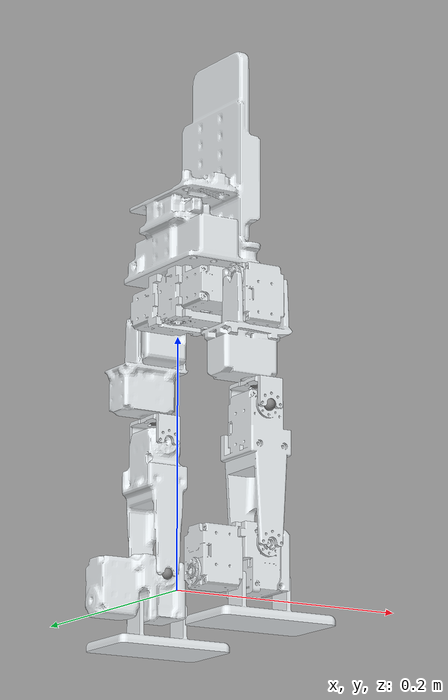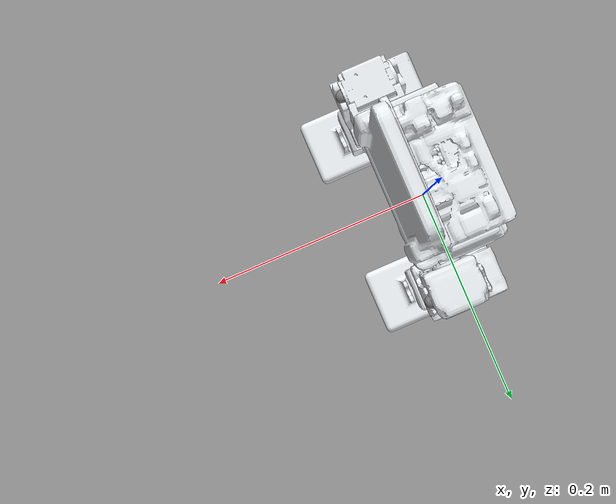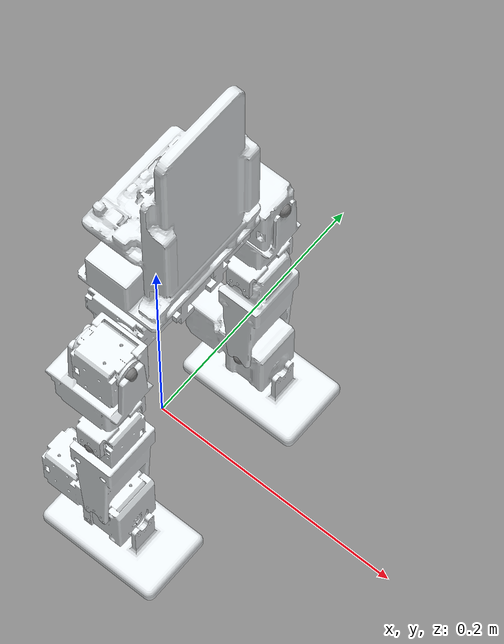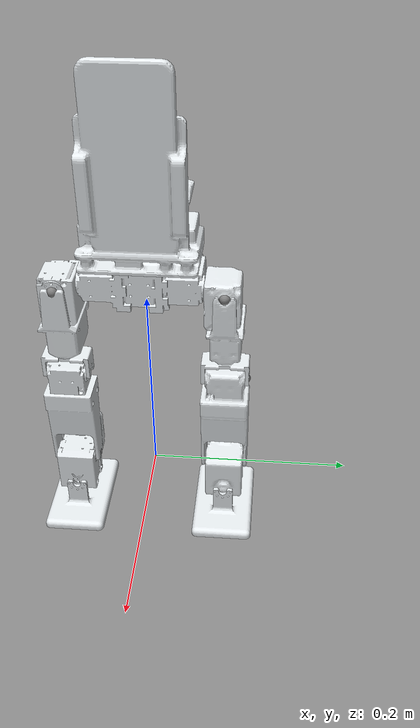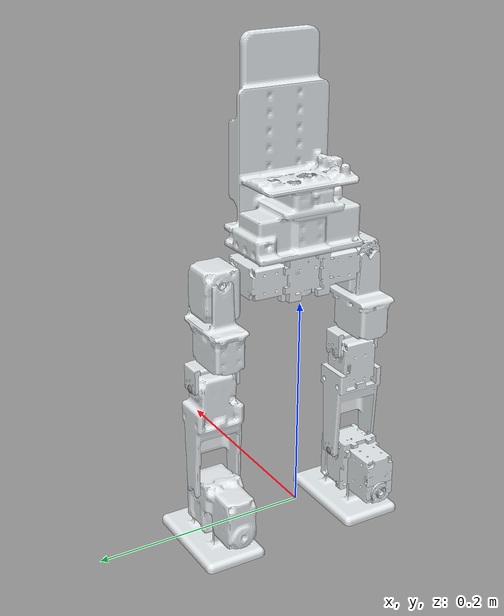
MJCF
<mujoco model="Phonebot_URDF_v2">
  <default>
    <default class="robot">
      <default class="motor">
        <joint />
        <motor />
        </default>
      <default class="visual">
        <geom material="visualgeom" contype="0" conaffinity="0" group="2" />
        </default>
      <default class="collision">
        <geom material="collision_material" condim="3" contype="0" conaffinity="1" priority="1" group="1" solref="0.005 1" solimp="0.99 0.999 1e-05" friction="1 0.01 0.01" />
        </default>
      </default>
    </default>
  <compiler angle="radian" meshdir="meshes/" />
  <asset>
    <material name="visualgeom" rgba="1 0.949019607843137 0.898039215686275 1" />
    <material name="default_material" rgba="0.7 0.7 0.7 1" />
    <material name="collision_material" rgba="0.89804 0.91765 0.92941 1.0" />
    <mesh name="base_link.STL" file="base_link.STL" />
    <mesh name="Body_Link.STL" file="Body_Link.STL" />
    <mesh name="L_Hip_Pitch_Link.STL" file="L_Hip_Pitch_Link.STL" />
    <mesh name="L_Hip_Roll_Link.STL" file="L_Hip_Roll_Link.STL" />
    <mesh name="L_Hip_Yaw_Link.STL" file="L_Hip_Yaw_Link.STL" />
    <mesh name="L_Knee_Pitch_Link.STL" file="L_Knee_Pitch_Link.STL" />
    <mesh name="L_Ankle_Pitch_Link.STL" file="L_Ankle_Pitch_Link.STL" />
    <mesh name="L_Ankle_Roll_Link.STL" file="L_Ankle_Roll_Link.STL" />
    <mesh name="R_Hip_Pitch_Link.STL" file="R_Hip_Pitch_Link.STL" />
    <mesh name="R_Hip_Roll_Link.STL" file="R_Hip_Roll_Link.STL" />
    <mesh name="R_Hip_Yaw_Link.STL" file="R_Hip_Yaw_Link.STL" />
    <mesh name="R_Knee_Pitch_Link.STL" file="R_Knee_Pitch_Link.STL" />
    <mesh name="R_Ankle_Pitch_Link.STL" file="R_Ankle_Pitch_Link.STL" />
    <mesh name="R_Ankle_Roll_Link.STL" file="R_Ankle_Roll_Link.STL" />
    </asset>
  <worldbody>
    <body name="base_link" pos="0.00000000 0.00000000 0.23100056" quat="1 0 0 0" childclass="robot">
      <freejoint name="floating_base" />
      <geom name="base_link_collision" pos="0 0 0" quat="1.0 0.0 0.0 0.0" type="mesh" mesh="base_link.STL" class="collision" />
      <geom name="base_link_visual" pos="0 0 0" quat="1.0 0.0 0.0 0.0" material="visualgeom" type="mesh" mesh="base_link.STL" class="visual" />
      <body name="Body_Link" pos="0 0 0.0205" quat="1.0 0.0 0.0 0.0">
        <joint name="Body_Yaw_Joint" type="hinge" ref="0.0" class="motor" range="-3.142 3.142" axis="0 0 1" />
        <site name="Body_Yaw_Joint_site" pos="0 0 0" quat="1 0 0 0" />
        <inertial pos="0.0218668011738023 -0.000431568318375537 0.05417319466971" quat="1.0 0.0 0.0 0.0" mass="0.386680464655816" diaginertia="0.000620927600653995 0.000390567916715494 0.000310705669130959" />
        <geom name="Body_Link_collision" pos="0 0 0" quat="1.0 0.0 0.0 0.0" type="mesh" mesh="Body_Link.STL" class="collision" />
        <geom name="Body_Link_visual" pos="0 0 0" quat="1.0 0.0 0.0 0.0" material="visualgeom" type="mesh" mesh="Body_Link.STL" class="visual" />
        </body>
      <body name="L_Hip_Pitch_Link" pos="0.024 0.05675 0" quat="0.7071054825112363 -0.7071080798594735 0.0 0.0">
        <joint name="L_Hip_Pitch_Joint" type="hinge" ref="0.0" class="motor" range="-1.571 1.571" axis="0 0 1" />
        <site name="L_Hip_Pitch_Joint_site" pos="0 0 0" quat="1 0 0 0" />
        <inertial pos="0.000393520865845574 0.0117226185476305 0.0166926526043892" quat="1.0 0.0 0.0 0.0" mass="0.0503140117431749" diaginertia="1.11934938325154e-05 7.37974976874462e-06 1.31723971411949e-05" />
        <geom name="L_Hip_Pitch_Link_collision" pos="0 0 0" quat="1.0 0.0 0.0 0.0" type="mesh" mesh="L_Hip_Pitch_Link.STL" class="collision" />
        <geom name="L_Hip_Pitch_Link_visual" pos="0 0 0" quat="1.0 0.0 0.0 0.0" material="visualgeom" type="mesh" mesh="L_Hip_Pitch_Link.STL" class="visual" />
        <body name="L_Hip_Roll_Link" pos="0.019 0 0.01875" quat="-2.5973434669646147e-06 0.707105482506466 2.597353007557415e-06 0.7071080798547033">
          <joint name="L_Hip_Roll_Joint" type="hinge" ref="0.0" class="motor" range="-0.786 3.142" axis="0 0 1" />
          <site name="L_Hip_Roll_Joint_site" pos="0 0 0" quat="1 0 0 0" />
          <inertial pos="8.30740041594946E-06 -0.0539730760978963 -0.0289917248021264" quat="1.0 0.0 0.0 0.0" mass="0.0577821503558218" diaginertia="1.85527228913837e-05 1.6254327826533e-05 9.78707268328593e-06" />
          <geom name="L_Hip_Roll_Link_collision" pos="0 0 0" quat="1.0 0.0 0.0 0.0" type="mesh" mesh="L_Hip_Roll_Link.STL" class="collision" />
          <geom name="L_Hip_Roll_Link_visual" pos="0 0 0" quat="1.0 0.0 0.0 0.0" material="visualgeom" type="mesh" mesh="L_Hip_Roll_Link.STL" class="visual" />
          <body name="L_Hip_Yaw_Link" pos="0 -0.07925 -0.019" quat="0.4999981633974483 0.49999999999662686 -0.49999999999662686 0.5000018366025516">
            <joint name="L_Hip_Yaw_Joint" type="hinge" ref="0.0" class="motor" range="-3.142 3.142" axis="0 0 1" />
            <site name="L_Hip_Yaw_Joint_site" pos="0 0 0" quat="1 0 0 0" />
            <inertial pos="1.04083408558608E-17 -1.38777878078145E-17 0.00625275879894566" quat="1.0 0.0 0.0 0.0" mass="0.00558246650899707" diaginertia="1.83396034792803e-06 4.55463603177527e-07 1.84259526538467e-06" />
            <geom name="L_Hip_Yaw_Link_collision" pos="0 0 0" quat="1.0 0.0 0.0 0.0" type="mesh" mesh="L_Hip_Yaw_Link.STL" class="collision" />
            <geom name="L_Hip_Yaw_Link_visual" pos="0 0 0" quat="1.0 0.0 0.0 0.0" material="visualgeom" type="mesh" mesh="L_Hip_Yaw_Link.STL" class="visual" />
            <body name="L_Knee_Pitch_Link" pos="0 -0.019 0.02125" quat="0.7071054825112363 0.7071080798594735 0.0 0.0">
              <joint name="L_Knee_Pitch_Joint" type="hinge" ref="0.0" class="motor" range="-1.571 1.571" axis="0 0 1" />
              <site name="L_Knee_Pitch_Joint_site" pos="0 0 0" quat="1 0 0 0" />
              <inertial pos="0.000851922444856955 0.0302265598825809 -0.0188367597643943" quat="1.0 0.0 0.0 0.0" mass="0.0859142330719075" diaginertia="3.92786008778373e-05 2.10807528817828e-05 3.03814272871544e-05" />
              <geom name="L_Knee_Pitch_Link_collision" pos="0 0 0" quat="1.0 0.0 0.0 0.0" type="mesh" mesh="L_Knee_Pitch_Link.STL" class="collision" />
              <geom name="L_Knee_Pitch_Link_visual" pos="0 0 0" quat="1.0 0.0 0.0 0.0" material="visualgeom" type="mesh" mesh="L_Knee_Pitch_Link.STL" class="visual" />
              <body name="L_Ankle_Pitch_Link" pos="0 0.1065 -0.0382" quat="-3.673205103346574e-06 0.9999999999932537 0.0 -0.0">
                <joint name="L_Ankle_Pitch_Joint" type="hinge" ref="0.0" class="motor" range="-1.571 1.571" axis="0 0 1" />
                <site name="L_Ankle_Pitch_Joint_site" pos="0 0 0" quat="1 0 0 0" />
                <inertial pos="-0.0163209351577764 -0.0112732070267727 -0.0187770389076161" quat="1.0 0.0 0.0 0.0" mass="0.10289318099601" diaginertia="2.63371352901457e-05 1.51681275400878e-05 2.42013656254686e-05" />
                <geom name="L_Ankle_Pitch_Link_collision" pos="0 0 0" quat="1.0 0.0 0.0 0.0" type="mesh" mesh="L_Ankle_Pitch_Link.STL" class="collision" />
                <geom name="L_Ankle_Pitch_Link_visual" pos="0 0 0" quat="1.0 0.0 0.0 0.0" material="visualgeom" type="mesh" mesh="L_Ankle_Pitch_Link.STL" class="visual" />
                <body name="L_Ankle_Roll_Link" pos="-0.01875 -0.024 -0.019" quat="0.7071054825112363 0.0 0.7071080798594735 0.0">
                  <joint name="L_Ankle_Roll_Joint" type="hinge" ref="0.0" class="motor" range="-1.571 1.571" axis="0 0 1" />
                  <site name="L_Ankle_Roll_Joint_site" pos="0 0 0" quat="1 0 0 0" />
                  <inertial pos="2.26157387261949E-09 -0.0302538242168855 0.0224329681837724" quat="1.0 0.0 0.0 0.0" mass="0.199941915686484" diaginertia="0.000160746415074451 0.000207710045474122 5.92078764405586e-05" />
                  <geom name="L_Ankle_Roll_Link_collision" pos="0 0 0" quat="1.0 0.0 0.0 0.0" type="mesh" mesh="L_Ankle_Roll_Link.STL" class="collision" />
                  <geom name="L_Ankle_Roll_Link_visual" pos="0 0 0" quat="1.0 0.0 0.0 0.0" material="visualgeom" type="mesh" mesh="L_Ankle_Roll_Link.STL" class="visual" />
                  </body>
                </body>
              </body>
            </body>
          </body>
        </body>
      <body name="R_Hip_Pitch_Link" pos="0.024 -0.05675 0" quat="0.7071054825112363 0.7071080798594735 0.0 0.0">
        <joint name="R_Hip_Pitch_Joint" type="hinge" ref="0.0" class="motor" range="-1.571 1.571" axis="0 0 1" />
        <site name="R_Hip_Pitch_Joint_site" pos="0 0 0" quat="1 0 0 0" />
        <inertial pos="0.00050052594333222 -0.0117226185590269 0.0166735468963194" quat="1.0 0.0 0.0 0.0" mass="0.0503140117662099" diaginertia="1.11934938447945e-05 7.37974977677535e-06 1.31723971628094e-05" />
        <geom name="R_Hip_Pitch_Link_collision" pos="0 0 0" quat="1.0 0.0 0.0 0.0" type="mesh" mesh="R_Hip_Pitch_Link.STL" class="collision" />
        <geom name="R_Hip_Pitch_Link_visual" pos="0 0 0" quat="1.0 0.0 0.0 0.0" material="visualgeom" type="mesh" mesh="R_Hip_Pitch_Link.STL" class="visual" />
        <body name="R_Hip_Roll_Link" pos="0.019 0 0.01875" quat="-2.5973434669646147e-06 0.707105482506466 2.597353007557415e-06 0.7071080798547033">
          <joint name="R_Hip_Roll_Joint" type="hinge" ref="0.0" class="motor" range="-3.142 0.786" axis="0 0 1" />
          <site name="R_Hip_Roll_Joint_site" pos="0 0 0" quat="1 0 0 0" />
          <inertial pos="-8.30740041608824E-06 0.0539730760978963 -0.0289917248021264" quat="1.0 0.0 0.0 0.0" mass="0.0577821503558218" diaginertia="1.85527228913837e-05 1.6254327826533e-05 9.78707268328592e-06" />
          <geom name="R_Hip_Roll_Link_collision" pos="0 0 0" quat="1.0 0.0 0.0 0.0" type="mesh" mesh="R_Hip_Roll_Link.STL" class="collision" />
          <geom name="R_Hip_Roll_Link_visual" pos="0 0 0" quat="1.0 0.0 0.0 0.0" material="visualgeom" type="mesh" mesh="R_Hip_Roll_Link.STL" class="visual" />
          <body name="R_Hip_Yaw_Link" pos="0 0.07925 -0.019" quat="-0.5000036731949838 0.4999981633907021 0.5000018365958054 0.4999963267847773">
            <joint name="R_Hip_Yaw_Joint" type="hinge" ref="0.0" class="motor" range="-3.142 3.142" axis="0 0 1" />
            <site name="R_Hip_Yaw_Joint_site" pos="0 0 0" quat="1 0 0 0" />
            <inertial pos="-6.07153216591882E-16 4.16333634234434E-17 0.00625275879894549" quat="1.0 0.0 0.0 0.0" mass="0.00558246650899706" diaginertia="1.83396034792803e-06 4.55463603177527e-07 1.84259526538467e-06" />
            <geom name="R_Hip_Yaw_Link_collision" pos="0 0 0" quat="1.0 0.0 0.0 0.0" type="mesh" mesh="R_Hip_Yaw_Link.STL" class="collision" />
            <geom name="R_Hip_Yaw_Link_visual" pos="0 0 0" quat="1.0 0.0 0.0 0.0" material="visualgeom" type="mesh" mesh="R_Hip_Yaw_Link.STL" class="visual" />
            <body name="R_Knee_Pitch_Link" pos="0 0.019 0.02125" quat="0.7071054825112363 -0.7071080798594735 0.0 0.0">
              <joint name="R_Knee_Pitch_Joint" type="hinge" ref="0.0" class="motor" range="-1.571 1.571" axis="0 0 1" />
              <site name="R_Knee_Pitch_Joint_site" pos="0 0 0" quat="1 0 0 0" />
              <inertial pos="0.000863111334580446 -0.030226559882581 -0.018639658989542" quat="1.0 0.0 0.0 0.0" mass="0.0859142330719075" diaginertia="3.92786008778374e-05 2.10807528817828e-05 3.03814272871544e-05" />
              <geom name="R_Knee_Pitch_Link_collision" pos="0 0 0" quat="1.0 0.0 0.0 0.0" type="mesh" mesh="R_Knee_Pitch_Link.STL" class="collision" />
              <geom name="R_Knee_Pitch_Link_visual" pos="0 0 0" quat="1.0 0.0 0.0 0.0" material="visualgeom" type="mesh" mesh="R_Knee_Pitch_Link.STL" class="visual" />
              <body name="R_Ankle_Pitch_Link" pos="0 -0.1065 -0.0378" quat="-3.673205103346574e-06 0.9999999999932537 0.0 -0.0">
                <joint name="R_Ankle_Pitch_Joint" type="hinge" ref="0.0" class="motor" range="-1.571 1.571" axis="0 0 1" />
                <site name="R_Ankle_Pitch_Joint_site" pos="0 0 0" quat="1 0 0 0" />
                <inertial pos="-0.0163302777131783 0.011273207032122 -0.0187857787610128" quat="1.0 0.0 0.0 0.0" mass="0.102893180972975" diaginertia="2.63371352688847e-05 1.51681275317499e-05 2.42013656139885e-05" />
                <geom name="R_Ankle_Pitch_Link_collision" pos="0 0 0" quat="1.0 0.0 0.0 0.0" type="mesh" mesh="R_Ankle_Pitch_Link.STL" class="collision" />
                <geom name="R_Ankle_Pitch_Link_visual" pos="0 0 0" quat="1.0 0.0 0.0 0.0" material="visualgeom" type="mesh" mesh="R_Ankle_Pitch_Link.STL" class="visual" />
                <body name="R_Ankle_Roll_Link" pos="-0.01875 0.024 -0.019" quat="-2.5973434669646147e-06 0.7071080798547033 2.597353007557415e-06 0.707105482506466">
                  <joint name="R_Ankle_Roll_Joint" type="hinge" ref="0.0" class="motor" range="-1.571 1.571" axis="0 0 1" />
                  <site name="R_Ankle_Roll_Joint_site" pos="0 0 0" quat="1 0 0 0" />
                  <inertial pos="2.26157140237326E-09 -0.0302538242168844 0.0224329681837727" quat="1.0 0.0 0.0 0.0" mass="0.199941915686484" diaginertia="0.000160746415074451 0.000207710045474122 5.92078764405586e-05" />
                  <geom name="R_Ankle_Roll_Link_collision" pos="0 0 0" quat="1.0 0.0 0.0 0.0" type="mesh" mesh="R_Ankle_Roll_Link.STL" class="collision" />
                  <geom name="R_Ankle_Roll_Link_visual" pos="0 0 0" quat="1.0 0.0 0.0 0.0" material="visualgeom" type="mesh" mesh="R_Ankle_Roll_Link.STL" class="visual" />
                  </body>
                </body>
              </body>
            </body>
          </body>
        </body>
      <site name="base_link_site" pos="0 0 0" quat="1 0 0 0" />
      <camera name="front_camera" mode="track" fovy="90.0" quat="4.329780281177467e-17 4.329780281177466e-17 0.7071067811865475 0.7071067811865476" pos="0.0 2.0 0.5" />
      <camera name="side_camera" mode="track" fovy="90.0" quat="-0.5 -0.4999999999999999 0.5 0.5000000000000001" pos="-2.0 0.0 0.5" />
      </body>
    </worldbody>
  <actuator>
    <motor name="Body_Yaw_Joint_ctrl" joint="Body_Yaw_Joint" class="motor" />
    <motor name="L_Hip_Pitch_Joint_ctrl" joint="L_Hip_Pitch_Joint" class="motor" />
    <motor name="L_Hip_Roll_Joint_ctrl" joint="L_Hip_Roll_Joint" class="motor" />
    <motor name="L_Hip_Yaw_Joint_ctrl" joint="L_Hip_Yaw_Joint" class="motor" />
    <motor name="L_Knee_Pitch_Joint_ctrl" joint="L_Knee_Pitch_Joint" class="motor" />
    <motor name="L_Ankle_Pitch_Joint_ctrl" joint="L_Ankle_Pitch_Joint" class="motor" />
    <motor name="L_Ankle_Roll_Joint_ctrl" joint="L_Ankle_Roll_Joint" class="motor" />
    <motor name="R_Hip_Pitch_Joint_ctrl" joint="R_Hip_Pitch_Joint" class="motor" />
    <motor name="R_Hip_Roll_Joint_ctrl" joint="R_Hip_Roll_Joint" class="motor" />
    <motor name="R_Hip_Yaw_Joint_ctrl" joint="R_Hip_Yaw_Joint" class="motor" />
    <motor name="R_Knee_Pitch_Joint_ctrl" joint="R_Knee_Pitch_Joint" class="motor" />
    <motor name="R_Ankle_Pitch_Joint_ctrl" joint="R_Ankle_Pitch_Joint" class="motor" />
    <motor name="R_Ankle_Roll_Joint_ctrl" joint="R_Ankle_Roll_Joint" class="motor" />
    </actuator>
  <contact>
    <exclude body1="base_link" body2="Body_Link" />
    <exclude body1="base_link" body2="L_Hip_Pitch_Link" />
    <exclude body1="L_Hip_Pitch_Link" body2="L_Hip_Roll_Link" />
    <exclude body1="L_Hip_Roll_Link" body2="L_Hip_Yaw_Link" />
    <exclude body1="L_Hip_Yaw_Link" body2="L_Knee_Pitch_Link" />
    <exclude body1="L_Knee_Pitch_Link" body2="L_Ankle_Pitch_Link" />
    <exclude body1="L_Ankle_Pitch_Link" body2="L_Ankle_Roll_Link" />
    <exclude body1="base_link" body2="R_Hip_Pitch_Link" />
    <exclude body1="R_Hip_Pitch_Link" body2="R_Hip_Roll_Link" />
    <exclude body1="R_Hip_Roll_Link" body2="R_Hip_Yaw_Link" />
    <exclude body1="R_Hip_Yaw_Link" body2="R_Knee_Pitch_Link" />
    <exclude body1="R_Knee_Pitch_Link" body2="R_Ankle_Pitch_Link" />
    <exclude body1="R_Ankle_Pitch_Link" body2="R_Ankle_Roll_Link" />
    </contact>
  <sensor>
    <framepos name="Body_Yaw_Joint_site_pos" objtype="site" objname="Body_Yaw_Joint_site" />
    <framequat name="Body_Yaw_Joint_site_quat" objtype="site" objname="Body_Yaw_Joint_site" />
    <framelinvel name="Body_Yaw_Joint_site_linvel" objtype="site" objname="Body_Yaw_Joint_site" />
    <frameangvel name="Body_Yaw_Joint_site_angvel" objtype="site" objname="Body_Yaw_Joint_site" />
    <velocimeter name="Body_Yaw_Joint_site_vel" site="Body_Yaw_Joint_site" />
    </sensor>
  </mujoco>
